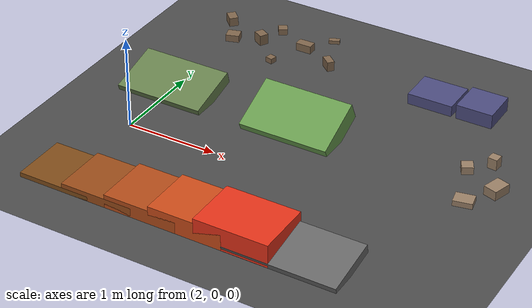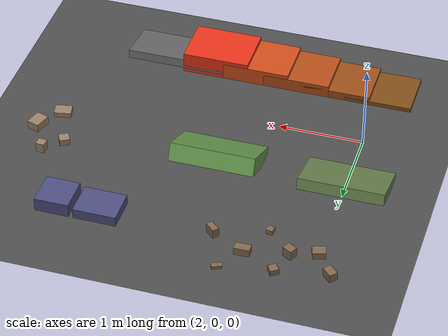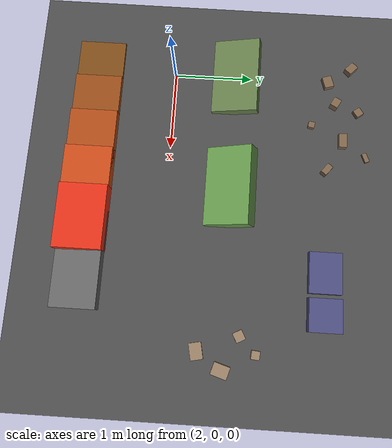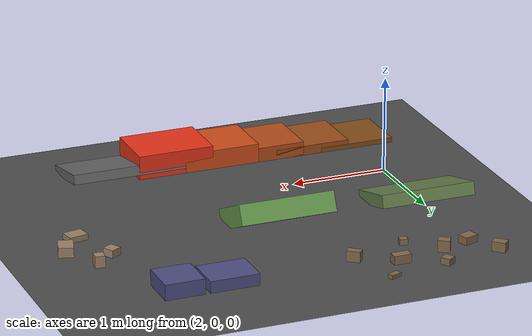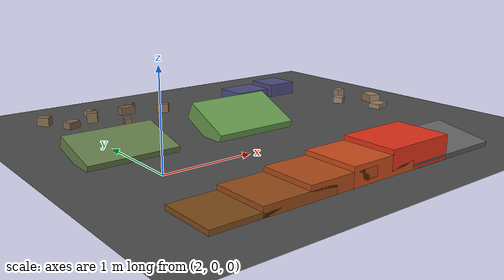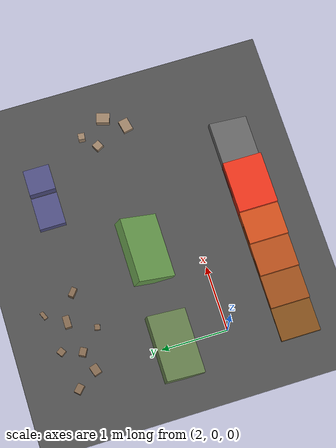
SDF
<?xml version="1.0" ?>
<sdf version="1.8">
  <world name="foothold_terrain">
    <physics name="1ms" type="ignored">
      <max_step_size>0.001</max_step_size>
      <real_time_factor>1.0</real_time_factor>
    </physics>
    <plugin filename="libgz-sim-physics-system.so" name="gz::sim::systems::Physics"/>
    <plugin filename="gz-sim-sensors-system" name="gz::sim::systems::Sensors">
      <render_engine>ogre2</render_engine>
    </plugin>
    <plugin filename="gz-sim-user-commands-system" name="gz::sim::systems::UserCommands"/>
    <plugin filename="libgz-sim-scene-broadcaster-system.so" name="gz::sim::systems::SceneBroadcaster"/>
    <plugin filename="libgz-sim-contact-system.so" name="gz::sim::systems::Contact"/>

    <scene>
      <ambient>.4 .4 .4</ambient>
      <sky></sky>
    </scene>

    <light type="directional" name="sun">
      <cast_shadows>true</cast_shadows>
      <pose>0 0 10 0 0 0</pose>
      <diffuse>0.8 0.8 0.8 1</diffuse>
      <specular>0.2 0.2 0.2 1</specular>
      <direction>-0.5 0.1 -0.9</direction>
    </light>

    <!-- Ground Plane -->
    <model name="ground_plane">
      <static>true</static>
      <link name="link">
        <collision name="c"><geometry><plane><normal>0 0 1</normal><size>40 40</size></plane></geometry></collision>
        <visual name="v">
          <geometry><plane><normal>0 0 1</normal><size>40 40</size></plane></geometry>
          <material><ambient>0.3 0.3 0.3 1</ambient><diffuse>0.3 0.3 0.3 1</diffuse></material>
        </visual>
      </link>
    </model>

    <!-- SECTION 1: STEPPED PLATFORMS (0.05-0.25m)    -->

    <model name="step_005">
      <pose>2.0 -1.0 0.025 0 0 0</pose>
      <static>true</static>
      <link name="link">
        <collision name="c"><geometry><box><size>0.8 0.6 0.05</size></box></geometry></collision>
        <visual name="v"><geometry><box><size>0.8 0.6 0.05</size></box></geometry>
        <material><ambient>0.5 0.3 0.1 1</ambient><diffuse>0.5 0.3 0.1 1</diffuse></material></visual>
      </link>
    </model>

    <model name="step_010">
      <pose>2.5 -1.0 0.05 0 0 0</pose>
      <static>true</static>
      <link name="link">
        <collision name="c"><geometry><box><size>0.8 0.6 0.10</size></box></geometry></collision>
        <visual name="v"><geometry><box><size>0.8 0.6 0.10</size></box></geometry>
        <material><ambient>0.6 0.3 0.1 1</ambient><diffuse>0.6 0.3 0.1 1</diffuse></material></visual>
      </link>
    </model>

    <model name="step_015">
      <pose>3.0 -1.0 0.075 0 0 0</pose>
      <static>true</static>
      <link name="link">
        <collision name="c"><geometry><box><size>0.8 0.6 0.15</size></box></geometry></collision>
        <visual name="v"><geometry><box><size>0.8 0.6 0.15</size></box></geometry>
        <material><ambient>0.7 0.3 0.1 1</ambient><diffuse>0.7 0.3 0.1 1</diffuse></material></visual>
      </link>
    </model>

    <model name="step_020">
      <pose>3.5 -1.0 0.10 0 0 0</pose>
      <static>true</static>
      <link name="link">
        <collision name="c"><geometry><box><size>0.8 0.6 0.20</size></box></geometry></collision>
        <visual name="v"><geometry><box><size>0.8 0.6 0.20</size></box></geometry>
        <material><ambient>0.8 0.3 0.1 1</ambient><diffuse>0.8 0.3 0.1 1</diffuse></material></visual>
      </link>
    </model>

    <model name="step_025">
      <pose>4.0 -1.0 0.125 0 0 0</pose>
      <static>true</static>
      <link name="link">
        <collision name="c"><geometry><box><size>0.8 0.6 0.25</size></box></geometry></collision>
        <visual name="v"><geometry><box><size>0.8 0.6 0.25</size></box></geometry>
        <material><ambient>0.9 0.2 0.1 1</ambient><diffuse>0.9 0.2 0.1 1</diffuse></material></visual>
      </link>
    </model>

    <!-- SECTION 2: SLOPED SURFACES (15° and 25°)    -->

    <model name="ramp_15deg">
      <pose>2.0 0.8 0 0 0 0</pose>
      <static>true</static>
      <link name="link">
        <collision name="c">
          <geometry><box><size>1.0 0.6 0.134</size></box></geometry>
          <pose>0 0 0.067 0.2618 0 0</pose>
        </collision>
        <visual name="v">
          <geometry><box><size>1.0 0.6 0.134</size></box></geometry>
          <pose>0 0 0.067 0.2618 0 0</pose>
          <material><ambient>0.4 0.5 0.3 1</ambient><diffuse>0.4 0.5 0.3 1</diffuse></material>
        </visual>
      </link>
    </model>

    <model name="ramp_25deg">
      <pose>3.5 0.8 0 0 0 0</pose>
      <static>true</static>
      <link name="link">
        <collision name="c">
          <geometry><box><size>1.0 0.6 0.211</size></box></geometry>
          <pose>0 0 0.1055 0.4363 0 0</pose>
        </collision>
        <visual name="v">
          <geometry><box><size>1.0 0.6 0.211</size></box></geometry>
          <pose>0 0 0.1055 0.4363 0 0</pose>
          <material><ambient>0.4 0.6 0.3 1</ambient><diffuse>0.4 0.6 0.3 1</diffuse></material>
        </visual>
      </link>
    </model>

    <!-- SECTION 3: RUBBLE FIELD (random block pile)  -->

    <model name="rubble_1">
      <pose>2.0 2.0 0.04 0 0 0.3</pose>
      <static>true</static>
      <link name="link">
        <collision name="c"><geometry><box><size>0.15 0.12 0.08</size></box></geometry></collision>
        <visual name="v"><geometry><box><size>0.15 0.12 0.08</size></box></geometry>
        <material><ambient>0.5 0.4 0.3 1</ambient><diffuse>0.5 0.4 0.3 1</diffuse></material></visual>
      </link>
    </model>

    <model name="rubble_2">
      <pose>2.3 2.1 0.06 0 0 -0.5</pose>
      <static>true</static>
      <link name="link">
        <collision name="c"><geometry><box><size>0.12 0.10 0.12</size></box></geometry></collision>
        <visual name="v"><geometry><box><size>0.12 0.10 0.12</size></box></geometry>
        <material><ambient>0.5 0.4 0.3 1</ambient><diffuse>0.5 0.4 0.3 1</diffuse></material></visual>
      </link>
    </model>

    <model name="rubble_3">
      <pose>1.8 2.3 0.05 0 0 0.8</pose>
      <static>true</static>
      <link name="link">
        <collision name="c"><geometry><box><size>0.10 0.14 0.10</size></box></geometry></collision>
        <visual name="v"><geometry><box><size>0.10 0.14 0.10</size></box></geometry>
        <material><ambient>0.5 0.4 0.3 1</ambient><diffuse>0.5 0.4 0.3 1</diffuse></material></visual>
      </link>
    </model>

    <model name="rubble_4">
      <pose>2.6 1.8 0.03 0 0 -0.2</pose>
      <static>true</static>
      <link name="link">
        <collision name="c"><geometry><box><size>0.08 0.08 0.06</size></box></geometry></collision>
        <visual name="v"><geometry><box><size>0.08 0.08 0.06</size></box></geometry>
        <material><ambient>0.5 0.4 0.3 1</ambient><diffuse>0.5 0.4 0.3 1</diffuse></material></visual>
      </link>
    </model>

    <model name="rubble_5">
      <pose>2.4 2.4 0.035 0 0 0.6</pose>
      <static>true</static>
      <link name="link">
        <collision name="c"><geometry><box><size>0.10 0.10 0.07</size></box></geometry></collision>
        <visual name="v"><geometry><box><size>0.10 0.10 0.07</size></box></geometry>
        <material><ambient>0.5 0.4 0.3 1</ambient><diffuse>0.5 0.4 0.3 1</diffuse></material></visual>
      </link>
    </model>

    <model name="rubble_6">
      <pose>2.8 2.2 0.045 0 0 0.0</pose>
      <static>true</static>
      <link name="link">
        <collision name="c"><geometry><box><size>0.18 0.10 0.09</size></box></geometry></collision>
        <visual name="v"><geometry><box><size>0.18 0.10 0.09</size></box></geometry>
        <material><ambient>0.5 0.4 0.3 1</ambient><diffuse>0.5 0.4 0.3 1</diffuse></material></visual>
      </link>
    </model>

    <model name="rubble_7">
      <pose>3.0 2.5 0.02 0 0 0.4</pose>
      <static>true</static>
      <link name="link">
        <collision name="c"><geometry><box><size>0.12 0.06 0.04</size></box></geometry></collision>
        <visual name="v"><geometry><box><size>0.12 0.06 0.04</size></box></geometry>
        <material><ambient>0.5 0.4 0.3 1</ambient><diffuse>0.5 0.4 0.3 1</diffuse></material></visual>
      </link>
    </model>

    <model name="rubble_8">
      <pose>3.2 2.0 0.055 0 0 -0.7</pose>
      <static>true</static>
      <link name="link">
        <collision name="c"><geometry><box><size>0.14 0.08 0.11</size></box></geometry></collision>
        <visual name="v"><geometry><box><size>0.14 0.08 0.11</size></box></geometry>
        <material><ambient>0.5 0.4 0.3 1</ambient><diffuse>0.5 0.4 0.3 1</diffuse></material></visual>
      </link>
    </model>

    <!-- SECTION 4: DISCRETE GAPS (flat ramps)        -->

    <model name="gap_ramp_1">
      <pose>4.5 2.0 0.06 0 0 0</pose>
      <static>true</static>
      <link name="link">
        <collision name="c"><geometry><box><size>0.5 0.4 0.12</size></box></geometry></collision>
        <visual name="v"><geometry><box><size>0.5 0.4 0.12</size></box></geometry>
        <material><ambient>0.3 0.3 0.5 1</ambient><diffuse>0.3 0.3 0.5 1</diffuse></material></visual>
      </link>
    </model>

    <model name="gap_ramp_2">
      <pose>5.0 2.0 0.08 0 0 0</pose>
      <static>true</static>
      <link name="link">
        <collision name="c"><geometry><box><size>0.4 0.4 0.16</size></box></geometry></collision>
        <visual name="v"><geometry><box><size>0.4 0.4 0.16</size></box></geometry>
        <material><ambient>0.3 0.3 0.5 1</ambient><diffuse>0.3 0.3 0.5 1</diffuse></material></visual>
      </link>
    </model>

    <!-- SECTION 5: SLOPE TRANSITION (gradual rise)   -->

    <model name="slope_transition">
      <pose>4.5 -1.0 0.05 0 0 0</pose>
      <static>true</static>
      <link name="link">
        <collision name="c">
          <geometry><box><size>1.2 0.6 0.10</size></box></geometry>
          <pose>0 0 0 0.1745 0 0</pose>
        </collision>
        <visual name="v">
          <geometry><box><size>1.2 0.6 0.10</size></box></geometry>
          <pose>0 0 0 0.1745 0 0</pose>
          <material><ambient>0.4 0.4 0.4 1</ambient><diffuse>0.4 0.4 0.4 1</diffuse></material>
        </visual>
      </link>
    </model>

    <!-- SECTION 6: MIXED ROUGH ZONE                  -->

    <model name="rough_zone_1">
      <pose>5.5 0.5 0.03 0 0 0.2</pose>
      <static>true</static>
      <link name="link">
        <collision name="c"><geometry><box><size>0.20 0.15 0.06</size></box></geometry></collision>
        <visual name="v"><geometry><box><size>0.20 0.15 0.06</size></box></geometry>
        <material><ambient>0.6 0.5 0.4 1</ambient><diffuse>0.6 0.5 0.4 1</diffuse></material></visual>
      </link>
    </model>

    <model name="rough_zone_2">
      <pose>5.7 0.8 0.05 0 0 -0.3</pose>
      <static>true</static>
      <link name="link">
        <collision name="c"><geometry><box><size>0.15 0.20 0.10</size></box></geometry></collision>
        <visual name="v"><geometry><box><size>0.15 0.20 0.10</size></box></geometry>
        <material><ambient>0.6 0.5 0.4 1</ambient><diffuse>0.6 0.5 0.4 1</diffuse></material></visual>
      </link>
    </model>

    <model name="rough_zone_3">
      <pose>5.3 1.0 0.04 0 0 0.5</pose>
      <static>true</static>
      <link name="link">
        <collision name="c"><geometry><box><size>0.12 0.12 0.08</size></box></geometry></collision>
        <visual name="v"><geometry><box><size>0.12 0.12 0.08</size></box></geometry>
        <material><ambient>0.6 0.5 0.4 1</ambient><diffuse>0.6 0.5 0.4 1</diffuse></material></visual>
      </link>
    </model>

    <model name="rough_zone_4">
      <pose>5.5 1.2 0.06 0 0 -0.1</pose>
      <static>true</static>
      <link name="link">
        <collision name="c"><geometry><box><size>0.10 0.10 0.12</size></box></geometry></collision>
        <visual name="v"><geometry><box><size>0.10 0.10 0.12</size></box></geometry>
        <material><ambient>0.6 0.5 0.4 1</ambient><diffuse>0.6 0.5 0.4 1</diffuse></material></visual>
      </link>
    </model>

  </world>
</sdf>
